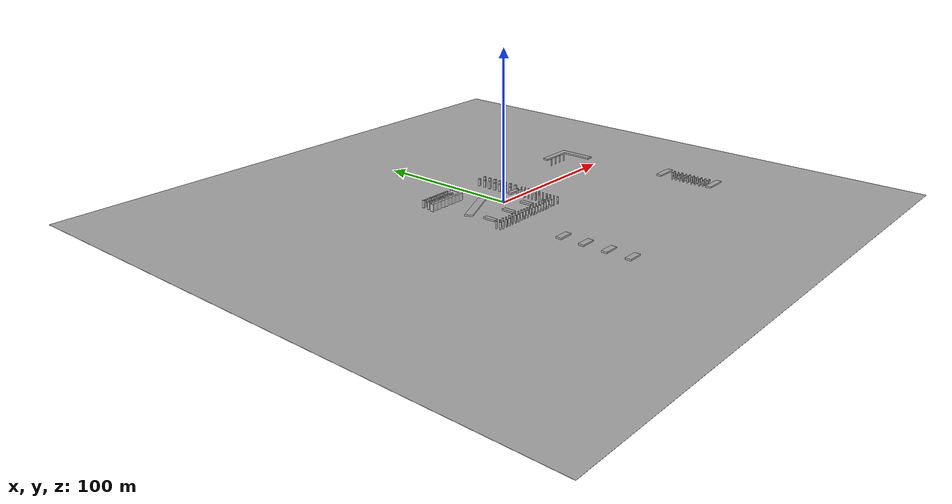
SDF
<?xml version="1.0" ?>
<sdf version="1.5">

  <model name="RFAL_land">
    <static>true</static>
    <link name="link">
      <visual name="ground">
        <cast_shadows>false</cast_shadows>
        <pose>1 0 -5 0 0 0</pose>
        <geometry>
          <box>
            <size>400 400 .1</size>
          </box>
        </geometry>
        <material>
          <script>
            <uri>file://Media/materials/scripts/sand.material</uri>
            <name>UUVSimulator/SandAndStones</name>
          </script>
        </material>
      </visual>

      <collision name="ground">
        <pose>1 0 -5 0 0 0</pose>
        <geometry>
          <box>
            <size>400 400 .1</size>
          </box>
        </geometry>
      </collision>

      <visual name="platform">
          <cast_shadows>false</cast_shadows>
          <pose>0 0.0 -4.5960578 0 0 0</pose> <!-- -4.5960578 for Big and -2.5960578 else-->
          <geometry>
              <mesh><uri>model://RFAL_land/meshes/RFALBig2.stl</uri><scale>1 1 1 </scale></mesh>
          </geometry>

      </visual>

      <collision name="platform">
          <pose>0 0.0 -4.5960578 0 0 0</pose>
          <geometry>
              <mesh><uri>model://RFAL_land/meshes/RFALBig2.stl</uri><scale>1 1 1</scale></mesh>
          </geometry>
      </collision>

    </link>
  </model>
</sdf>
